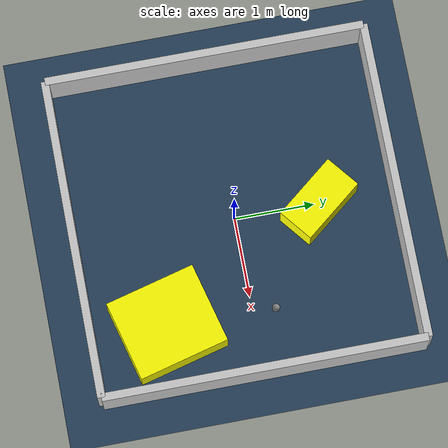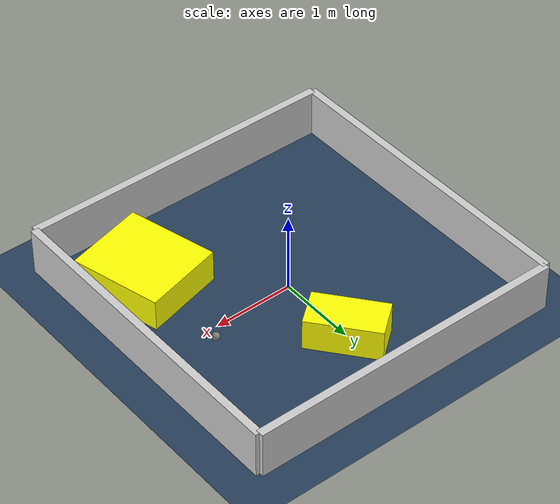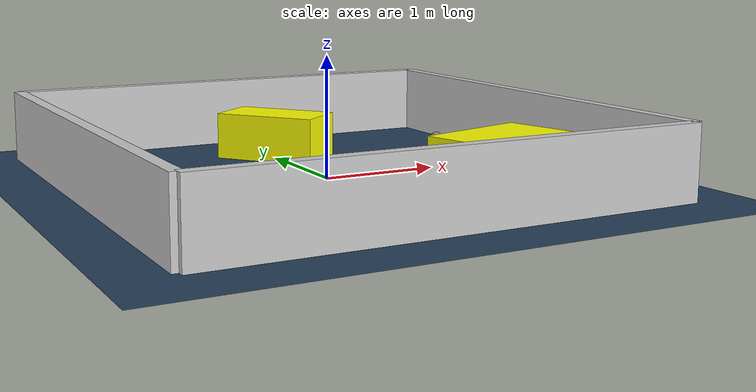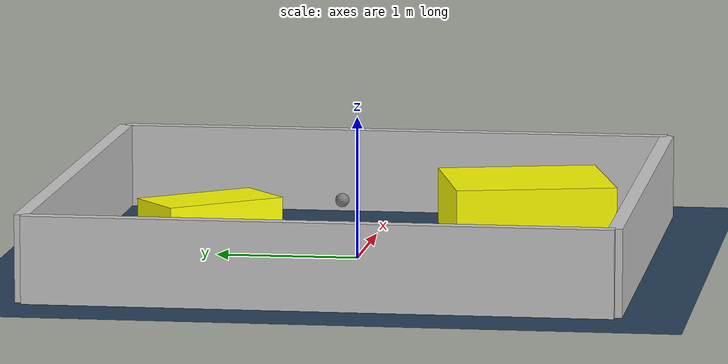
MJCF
<?xml version="1.0" ?>
<mujoco model="generated_environment">
  <option timestep="0.01" integrator="RK4" cone="elliptic"/>
  <default>
    <geom density="1"/>
  </default>
  <asset>
    <texture builtin="gradient" height="3072" rgb1="0.3 0.5 0.7" rgb2="0 0 0" type="skybox" width="512"/>
    <texture builtin="checker" height="300" mark="edge" markrgb="0.8 0.8 0.8" name="groundplane" rgb1="0.2 0.3 0.4" rgb2="0.1 0.2 0.3" type="2d" width="300"/>
    <material name="groundplane" reflectance="0.2" texrepeat="5 5" texture="groundplane" texuniform="true"/>
    <material name="robot" rgba="0.0 1.0 0.0 1"/>
  </asset>
  <worldbody>
    <light dir="0 0 -1" directional="true" pos="0 0 1.5"/>
    <geom condim="4" friction="1.0 0.005 0.001" material="groundplane" name="floor" size="0 0 0.05" type="plane"/>
    <body name="walls">
      <geom name="wall_1" condim="4" pos="-2.0 0.0 0.3" rgba="0.800000011920929 0.800000011920929 0.800000011920929 1.0" size="0.05 2.0 0.3" type="box"/>
      <geom name="wall_2" condim="4" pos="2.0 0.0 0.3" rgba="0.800000011920929 0.800000011920929 0.800000011920929 1.0" size="0.05 2.0 0.3" type="box"/>
      <geom name="wall_3" condim="4" pos="0.0 -2.0 0.3" rgba="0.800000011920929 0.800000011920929 0.800000011920929 1.0" size="2.0 0.05 0.3" type="box"/>
      <geom name="wall_4" condim="4" pos="0.0 2.0 0.3" rgba="0.800000011920929 0.800000011920929 0.800000011920929 1.0" size="2.0 0.05 0.3" type="box"/>
    </body>
    <body name="robot">
      <joint name="joint_x" type="slide" pos="0 0 0" axis="1 0 0"/>
      <joint name="joint_y" type="slide" pos="0 0 0" axis="0 1 0"/>
      <geom name="robot" type="sphere" pos="1.2329997628034968 0.2818449845394553 0.2" size="0.05" mass="5." friction="1.0 0.005 0.0001" condim="4"/>
      <site name="sensor_ball"/>
    </body>
    <body name="obstacle_1_movable">
      <geom name="obstacle_1_movable" condim="4" pos="1.1986303359824944 -1.0604488329087218 0.2" euler="0 0 194.45411010970417" friction="1.0 0.005 0.001" rgba="1 1 0 1" size="0.5120720482178546 0.5753481481324212 0.2" type="box" mass="0.1"/>
      <joint type="free"/>
    </body>
    <body name="obstacle_2_movable">
      <geom name="obstacle_2_movable" condim="4" pos="0.029995296583642528 1.050978886292145 0.2" euler="0 0 218.5837531225125" friction="1.0 0.005 0.001" rgba="1 1 0 1" size="0.2413382838772662 0.45085783343521985 0.2" type="box" mass="0.1"/>
      <joint type="free"/>
    </body>
  </worldbody>
  <actuator>
    <motor name="actuator_x" joint="joint_x" gear="1" ctrlrange="-1 1"/>
    <motor name="actuator_y" joint="joint_y" gear="1" ctrlrange="-1 1"/>
  </actuator>
</mujoco>
